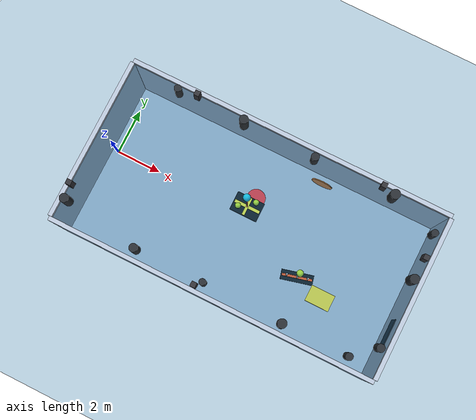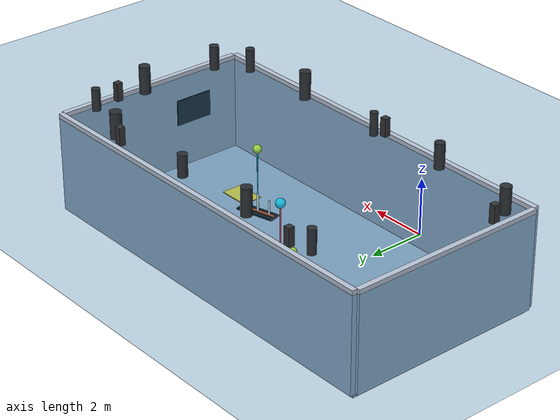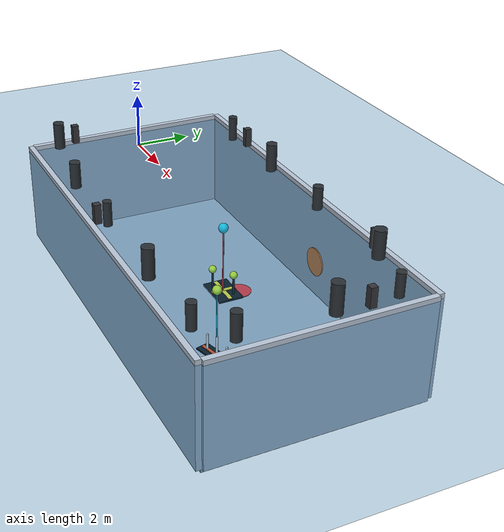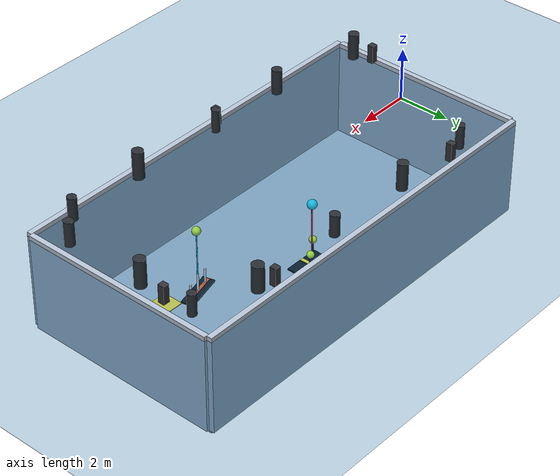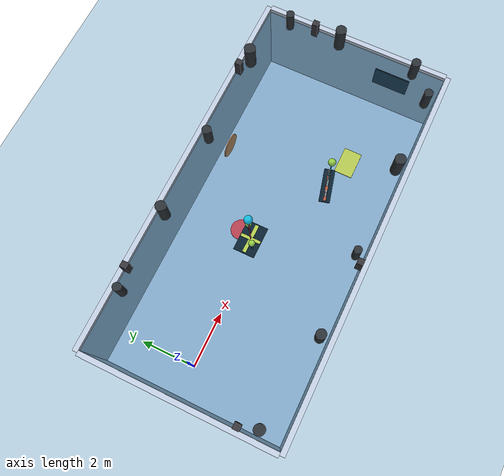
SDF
<?xml version="1.0" ?>
<sdf version="1.6">
  <world name="fathomwerx_pool">
    <physics type="ode">
      <max_step_size>0.001</max_step_size>
      <real_time_factor>1</real_time_factor>
      <real_time_update_rate>1000</real_time_update_rate>
    </physics>

    <scene>
      <ambient>0.01 0.01 0.01 1.0</ambient>
      <background>0.70 0.84 0.95 1.0</background>
      <grid>false</grid>
      <sky>
        <clouds>
          <speed>12</speed>
        </clouds>
      </sky>
      <shadows>1</shadows>
    </scene>

    <!-- Global lights copied from ocean_surface.world for consistent sim visibility. -->
    <light type="directional" name="sun1">
      <pose>50 0 150 0 0 0</pose>
      <diffuse>1 1 1 1</diffuse>
      <specular>.1 .1 .1 1</specular>
      <direction>0.3 0.3 -1</direction>
      <cast_shadows>false</cast_shadows>
    </light>

    <light type="directional" name="sun_diffuse">
      <pose>-50 0 -150 0 0 0</pose>
      <diffuse>0.6 0.6 0.6 1</diffuse>
      <specular>0 0 0 1</specular>
      <direction>-0.3 -0.3 -1</direction>
      <cast_shadows>false</cast_shadows>
    </light>

    <!-- Extra local fill light to keep the empty tank interior readable. -->
    <light type="point" name="pool_overhead_fill">
      <pose>0 0 8 0 0 0</pose>
      <diffuse>0.85 0.9 1.0 1</diffuse>
      <specular>0.15 0.15 0.15 1</specular>
      <attenuation>
        <range>30</range>
        <constant>0.6</constant>
        <linear>0.02</linear>
        <quadratic>0.002</quadratic>
      </attenuation>
      <cast_shadows>false</cast_shadows>
    </light>

    <gui fullscreen='0'>
      <camera name='user_camera'>
        <pose frame=''>6.4 -15.0 9.5 0.0 0.45 1.57</pose>
        <view_controller>orbit</view_controller>
        <projection_type>perspective</projection_type>
      </camera>
    </gui>

    <!-- Tank dimensions: 25ft x 50ft x 12ft => 7.62m x 15.24m x 3.66m -->
    <model name="pool_floor">
      <static>true</static>
      <pose>6.42 0.0 -3.76 0 0 0</pose>
      <link name="floor_link">
        <collision name="floor_collision">
          <geometry>
            <box>
              <size>15.24 7.62 0.2</size>
            </box>
          </geometry>
        </collision>
        <visual name="floor_visual">
          <geometry>
            <box>
              <size>15.24 7.62 0.2</size>
            </box>
          </geometry>
          <material>
            <ambient>0.58 0.66 0.74 1</ambient>
            <diffuse>0.66 0.74 0.82 1</diffuse>
          </material>
        </visual>
      </link>
    </model>

    <model name="pool_water_surface">
      <static>true</static>
      <pose>6.42 0.0 0.0 0 0 0</pose>
      <link name="water_link">
        <visual name="water_visual">
          <geometry>
            <plane>
              <normal>0 0 1</normal>
              <size>100 100</size>
            </plane>
          </geometry>
          <material>
            <ambient>0.1 0.3 0.5 0.8</ambient>
            <diffuse>0.1 0.4 0.6 0.8</diffuse>
            <specular>0.8 0.8 0.8 1</specular>
          </material>
        </visual>
        <collision name="water_collision">
          <geometry>
            <plane>
              <normal>0 0 1</normal>
              <size>100 100</size>
            </plane>
          </geometry>
          <surface>
            <friction>
              <ode>
                <mu>0.01</mu>
                <mu2>0.01</mu2>
              </ode>
            </friction>
          </surface>
        </collision>
      </link>
    </model>

    <model name="pool_wall_north">
      <static>true</static>
      <pose>6.42 3.91 -1.755 0 0 0</pose>
      <link name="wall_link">
        <collision name="wall_collision">
          <geometry>
            <box>
              <size>15.44 0.20 3.81</size>
            </box>
          </geometry>
        </collision>
        <visual name="wall_visual">
          <geometry>
            <box>
              <size>15.44 0.20 3.81</size>
            </box>
          </geometry>
          <material>
            <ambient>0.62 0.67 0.74 1</ambient>
            <diffuse>0.72 0.77 0.84 1</diffuse>
          </material>
        </visual>
      </link>
    </model>

    <model name="pool_wall_south">
      <static>true</static>
      <pose>6.42 -3.91 -1.755 0 0 0</pose>
      <link name="wall_link">
        <collision name="wall_collision">
          <geometry>
            <box>
              <size>15.44 0.20 3.81</size>
            </box>
          </geometry>
        </collision>
        <visual name="wall_visual">
          <geometry>
            <box>
              <size>15.44 0.20 3.81</size>
            </box>
          </geometry>
          <material>
            <ambient>0.62 0.67 0.74 1</ambient>
            <diffuse>0.72 0.77 0.84 1</diffuse>
          </material>
        </visual>
      </link>
    </model>

    <model name="pool_wall_east">
      <static>true</static>
      <pose>14.14 0.0 -1.755 0 0 0</pose>
      <link name="wall_link">
        <collision name="wall_collision">
          <geometry>
            <box>
              <size>0.20 7.62 3.81</size>
            </box>
          </geometry>
        </collision>
        <visual name="wall_visual">
          <geometry>
            <box>
              <size>0.20 7.62 3.81</size>
            </box>
          </geometry>
          <material>
            <ambient>0.62 0.67 0.74 1</ambient>
            <diffuse>0.72 0.77 0.84 1</diffuse>
          </material>
        </visual>
      </link>
    </model>

    <model name="pool_wall_west">
      <static>true</static>
      <pose>-1.30 0.0 -1.755 0 0 0</pose>
      <link name="wall_link">
        <collision name="wall_collision">
          <geometry>
            <box>
              <size>0.20 7.62 3.81</size>
            </box>
          </geometry>
        </collision>
        <visual name="wall_visual">
          <geometry>
            <box>
              <size>0.20 7.62 3.81</size>
            </box>
          </geometry>
          <material>
            <ambient>0.62 0.67 0.74 1</ambient>
            <diffuse>0.72 0.77 0.84 1</diffuse>
          </material>
        </visual>
      </link>
    </model>

    <model name="pool_lidar_reference_post_a">
      <static>true</static>
      <pose>2.00 3.68 0.45 0 0 0</pose>
      <link name="post_link">
        <collision name="post_collision">
          <geometry>
            <box>
              <size>0.24 0.24 0.70</size>
            </box>
          </geometry>
        </collision>
        <visual name="post_visual">
          <geometry>
            <box>
              <size>0.24 0.24 0.70</size>
            </box>
          </geometry>
          <material>
            <ambient>0.18 0.18 0.20 1</ambient>
            <diffuse>0.20 0.20 0.22 1</diffuse>
          </material>
        </visual>
      </link>
    </model>

    <model name="pool_lidar_reference_post_b">
      <static>true</static>
      <pose>5.60 -3.68 0.45 0 0 0</pose>
      <link name="post_link">
        <collision name="post_collision">
          <geometry>
            <box>
              <size>0.24 0.24 0.70</size>
            </box>
          </geometry>
        </collision>
        <visual name="post_visual">
          <geometry>
            <box>
              <size>0.24 0.24 0.70</size>
            </box>
          </geometry>
          <material>
            <ambient>0.18 0.18 0.20 1</ambient>
            <diffuse>0.20 0.20 0.22 1</diffuse>
          </material>
        </visual>
      </link>
    </model>

    <model name="pool_lidar_reference_post_c">
      <static>true</static>
      <pose>10.90 3.68 0.45 0 0 0</pose>
      <link name="post_link">
        <collision name="post_collision">
          <geometry>
            <box>
              <size>0.24 0.24 0.70</size>
            </box>
          </geometry>
        </collision>
        <visual name="post_visual">
          <geometry>
            <box>
              <size>0.24 0.24 0.70</size>
            </box>
          </geometry>
          <material>
            <ambient>0.18 0.18 0.20 1</ambient>
            <diffuse>0.20 0.20 0.22 1</diffuse>
          </material>
        </visual>
      </link>
    </model>

    <model name="pool_lidar_reference_post_d">
      <static>true</static>
      <pose>13.78 1.70 0.45 0 0 0</pose>
      <link name="post_link">
        <collision name="post_collision">
          <geometry>
            <box>
              <size>0.24 0.24 0.70</size>
            </box>
          </geometry>
        </collision>
        <visual name="post_visual">
          <geometry>
            <box>
              <size>0.24 0.24 0.70</size>
            </box>
          </geometry>
          <material>
            <ambient>0.18 0.18 0.20 1</ambient>
            <diffuse>0.20 0.20 0.22 1</diffuse>
          </material>
        </visual>
      </link>
    </model>

    <model name="pool_lidar_reference_post_e">
      <static>true</static>
      <pose>-1.08 -2.20 0.45 0 0 0</pose>
      <link name="post_link">
        <collision name="post_collision">
          <geometry>
            <box>
              <size>0.24 0.24 0.70</size>
            </box>
          </geometry>
        </collision>
        <visual name="post_visual">
          <geometry>
            <box>
              <size>0.24 0.24 0.70</size>
            </box>
          </geometry>
          <material>
            <ambient>0.18 0.18 0.20 1</ambient>
            <diffuse>0.20 0.20 0.22 1</diffuse>
          </material>
        </visual>
      </link>
    </model>

    <!-- Asymmetric registration pylons.
         Cylindrical wall-side landmarks give DLiO nonparallel LiDAR normals in
         the otherwise corridor-like pool while preserving the open center lane. -->
    <model name="pool_lidar_registration_landmarks">
      <static>true</static>
      <link name="landmarks_link">
        <collision name="north_pylon_1_collision">
          <pose>1.20 3.45 0.56 0 0 0</pose>
          <geometry><cylinder><radius>0.16</radius><length>0.92</length></cylinder></geometry>
        </collision>
        <visual name="north_pylon_1_visual">
          <pose>1.20 3.45 0.56 0 0 0</pose>
          <geometry><cylinder><radius>0.16</radius><length>0.92</length></cylinder></geometry>
          <material><ambient>0.12 0.14 0.16 1</ambient><diffuse>0.16 0.18 0.20 1</diffuse></material>
        </visual>
        <collision name="north_pylon_2_collision">
          <pose>4.35 3.47 0.62 0 0 0</pose>
          <geometry><cylinder><radius>0.20</radius><length>1.04</length></cylinder></geometry>
        </collision>
        <visual name="north_pylon_2_visual">
          <pose>4.35 3.47 0.62 0 0 0</pose>
          <geometry><cylinder><radius>0.20</radius><length>1.04</length></cylinder></geometry>
          <material><ambient>0.12 0.14 0.16 1</ambient><diffuse>0.16 0.18 0.20 1</diffuse></material>
        </visual>
        <collision name="north_pylon_3_collision">
          <pose>7.75 3.43 0.52 0 0 0</pose>
          <geometry><cylinder><radius>0.18</radius><length>0.84</length></cylinder></geometry>
        </collision>
        <visual name="north_pylon_3_visual">
          <pose>7.75 3.43 0.52 0 0 0</pose>
          <geometry><cylinder><radius>0.18</radius><length>0.84</length></cylinder></geometry>
          <material><ambient>0.12 0.14 0.16 1</ambient><diffuse>0.16 0.18 0.20 1</diffuse></material>
        </visual>
        <collision name="north_pylon_4_collision">
          <pose>11.45 3.46 0.60 0 0 0</pose>
          <geometry><cylinder><radius>0.22</radius><length>1.00</length></cylinder></geometry>
        </collision>
        <visual name="north_pylon_4_visual">
          <pose>11.45 3.46 0.60 0 0 0</pose>
          <geometry><cylinder><radius>0.22</radius><length>1.00</length></cylinder></geometry>
          <material><ambient>0.12 0.14 0.16 1</ambient><diffuse>0.16 0.18 0.20 1</diffuse></material>
        </visual>
        <collision name="south_pylon_1_collision">
          <pose>2.70 -3.45 0.58 0 0 0</pose>
          <geometry><cylinder><radius>0.19</radius><length>0.96</length></cylinder></geometry>
        </collision>
        <visual name="south_pylon_1_visual">
          <pose>2.70 -3.45 0.58 0 0 0</pose>
          <geometry><cylinder><radius>0.19</radius><length>0.96</length></cylinder></geometry>
          <material><ambient>0.12 0.14 0.16 1</ambient><diffuse>0.16 0.18 0.20 1</diffuse></material>
        </visual>
        <collision name="south_pylon_2_collision">
          <pose>5.90 -3.42 0.54 0 0 0</pose>
          <geometry><cylinder><radius>0.15</radius><length>0.88</length></cylinder></geometry>
        </collision>
        <visual name="south_pylon_2_visual">
          <pose>5.90 -3.42 0.54 0 0 0</pose>
          <geometry><cylinder><radius>0.15</radius><length>0.88</length></cylinder></geometry>
          <material><ambient>0.12 0.14 0.16 1</ambient><diffuse>0.16 0.18 0.20 1</diffuse></material>
        </visual>
        <collision name="south_pylon_3_collision">
          <pose>9.60 -3.48 0.64 0 0 0</pose>
          <geometry><cylinder><radius>0.21</radius><length>1.08</length></cylinder></geometry>
        </collision>
        <visual name="south_pylon_3_visual">
          <pose>9.60 -3.48 0.64 0 0 0</pose>
          <geometry><cylinder><radius>0.21</radius><length>1.08</length></cylinder></geometry>
          <material><ambient>0.12 0.14 0.16 1</ambient><diffuse>0.16 0.18 0.20 1</diffuse></material>
        </visual>
        <collision name="south_pylon_4_collision">
          <pose>12.65 -3.44 0.55 0 0 0</pose>
          <geometry><cylinder><radius>0.17</radius><length>0.90</length></cylinder></geometry>
        </collision>
        <visual name="south_pylon_4_visual">
          <pose>12.65 -3.44 0.55 0 0 0</pose>
          <geometry><cylinder><radius>0.17</radius><length>0.90</length></cylinder></geometry>
          <material><ambient>0.12 0.14 0.16 1</ambient><diffuse>0.16 0.18 0.20 1</diffuse></material>
        </visual>
        <collision name="east_pylon_1_collision">
          <pose>13.65 -2.55 0.57 0 0 0</pose>
          <geometry><cylinder><radius>0.18</radius><length>0.94</length></cylinder></geometry>
        </collision>
        <visual name="east_pylon_1_visual">
          <pose>13.65 -2.55 0.57 0 0 0</pose>
          <geometry><cylinder><radius>0.18</radius><length>0.94</length></cylinder></geometry>
          <material><ambient>0.12 0.14 0.16 1</ambient><diffuse>0.16 0.18 0.20 1</diffuse></material>
        </visual>
        <collision name="east_pylon_2_collision">
          <pose>13.67 0.60 0.63 0 0 0</pose>
          <geometry><cylinder><radius>0.21</radius><length>1.06</length></cylinder></geometry>
        </collision>
        <visual name="east_pylon_2_visual">
          <pose>13.67 0.60 0.63 0 0 0</pose>
          <geometry><cylinder><radius>0.21</radius><length>1.06</length></cylinder></geometry>
          <material><ambient>0.12 0.14 0.16 1</ambient><diffuse>0.16 0.18 0.20 1</diffuse></material>
        </visual>
        <collision name="east_pylon_3_collision">
          <pose>13.64 2.75 0.52 0 0 0</pose>
          <geometry><cylinder><radius>0.16</radius><length>0.84</length></cylinder></geometry>
        </collision>
        <visual name="east_pylon_3_visual">
          <pose>13.64 2.75 0.52 0 0 0</pose>
          <geometry><cylinder><radius>0.16</radius><length>0.84</length></cylinder></geometry>
          <material><ambient>0.12 0.14 0.16 1</ambient><diffuse>0.16 0.18 0.20 1</diffuse></material>
        </visual>
        <collision name="west_pylon_1_collision">
          <pose>-0.86 -2.90 0.60 0 0 0</pose>
          <geometry><cylinder><radius>0.20</radius><length>1.00</length></cylinder></geometry>
        </collision>
        <visual name="west_pylon_1_visual">
          <pose>-0.86 -2.90 0.60 0 0 0</pose>
          <geometry><cylinder><radius>0.20</radius><length>1.00</length></cylinder></geometry>
          <material><ambient>0.12 0.14 0.16 1</ambient><diffuse>0.16 0.18 0.20 1</diffuse></material>
        </visual>
      </link>
    </model>

    <model name="floor_circle_mid_pool">
      <static>true</static>
      <pose>6.00 1.40 -3.645 0 0 0</pose>
      <link name="target_link">
        <collision name="target_collision">
          <geometry>
            <cylinder>
              <radius>0.45</radius>
              <length>0.03</length>
            </cylinder>
          </geometry>
        </collision>
        <visual name="target_visual">
          <geometry>
            <cylinder>
              <radius>0.45</radius>
              <length>0.03</length>
            </cylinder>
          </geometry>
          <material>
            <ambient>0.88 0.12 0.12 1</ambient>
            <diffuse>0.98 0.18 0.18 1</diffuse>
          </material>
        </visual>
      </link>
    </model>

    <model name="floor_rect_far_pool">
      <static>true</static>
      <pose>10.80 -1.50 -3.645 0 0 0</pose>
      <link name="target_link">
        <collision name="target_collision">
          <geometry>
            <box>
              <size>1.20 0.80 0.03</size>
            </box>
          </geometry>
        </collision>
        <visual name="target_visual">
          <geometry>
            <box>
              <size>1.20 0.80 0.03</size>
            </box>
          </geometry>
          <material>
            <ambient>0.96 0.86 0.12 1</ambient>
            <diffuse>0.98 0.90 0.18 1</diffuse>
          </material>
        </visual>
      </link>
    </model>

    <model name="bottom_marker_rig_mid_pool">
      <static>true</static>
      <pose>5.80 0.85 -3.645 0 0 0</pose>
      <link name="target_link">
        <collision name="weighted_base_collision">
          <pose>0 0 0.025 0 0 0</pose>
          <geometry>
            <box>
              <size>1.40 0.95 0.05</size>
            </box>
          </geometry>
        </collision>
        <visual name="weighted_base_visual">
          <pose>0 0 0.025 0 0 0</pose>
          <geometry>
            <box>
              <size>1.40 0.95 0.05</size>
            </box>
          </geometry>
          <material>
            <ambient>0.02 0.02 0.02 1</ambient>
            <diffuse>0.02 0.02 0.02 1</diffuse>
          </material>
        </visual>
        <visual name="base_marker_cross_visual">
          <pose>0 0 0.06 0 0 0</pose>
          <geometry>
            <box>
              <size>1.30 0.16 0.03</size>
            </box>
          </geometry>
          <material>
            <ambient>0.98 0.92 0.12 1</ambient>
            <diffuse>1.0 0.95 0.18 1</diffuse>
          </material>
        </visual>
        <visual name="base_marker_cross_visual_orthogonal">
          <pose>0 0 0.065 0 0 1.570796</pose>
          <geometry>
            <box>
              <size>0.90 0.14 0.03</size>
            </box>
          </geometry>
          <material>
            <ambient>0.98 0.92 0.12 1</ambient>
            <diffuse>1.0 0.95 0.18 1</diffuse>
          </material>
        </visual>
        <collision name="short_rod_left_collision">
          <pose>-0.35 -0.25 0.38 0 0 0</pose>
          <geometry>
            <cylinder>
              <radius>0.04</radius>
              <length>0.70</length>
            </cylinder>
          </geometry>
        </collision>
        <visual name="short_rod_left_visual">
          <pose>-0.35 -0.25 0.38 0 0 0</pose>
          <geometry>
            <cylinder>
              <radius>0.04</radius>
              <length>0.70</length>
            </cylinder>
          </geometry>
          <material>
            <ambient>0.05 0.05 0.05 1</ambient>
            <diffuse>0.04 0.04 0.04 1</diffuse>
          </material>
        </visual>
        <collision name="short_rod_right_collision">
          <pose>0.35 0.25 0.38 0 0 0</pose>
          <geometry>
            <cylinder>
              <radius>0.04</radius>
              <length>0.70</length>
            </cylinder>
          </geometry>
        </collision>
        <visual name="short_rod_right_visual">
          <pose>0.35 0.25 0.38 0 0 0</pose>
          <geometry>
            <cylinder>
              <radius>0.04</radius>
              <length>0.70</length>
            </cylinder>
          </geometry>
          <material>
            <ambient>0.05 0.05 0.05 1</ambient>
            <diffuse>0.04 0.04 0.04 1</diffuse>
          </material>
        </visual>
        <collision name="tennis_ball_left_collision">
          <pose>-0.35 -0.25 0.82 0 0 0</pose>
          <geometry>
            <sphere>
              <radius>0.14</radius>
            </sphere>
          </geometry>
        </collision>
        <visual name="tennis_ball_left_visual">
          <pose>-0.35 -0.25 0.82 0 0 0</pose>
          <geometry>
            <sphere>
              <radius>0.14</radius>
            </sphere>
          </geometry>
          <material>
            <ambient>0.72 1.0 0.06 1</ambient>
            <diffuse>0.80 1.0 0.10 1</diffuse>
          </material>
        </visual>
        <collision name="tennis_ball_right_collision">
          <pose>0.35 0.25 0.82 0 0 0</pose>
          <geometry>
            <sphere>
              <radius>0.14</radius>
            </sphere>
          </geometry>
        </collision>
        <visual name="tennis_ball_right_visual">
          <pose>0.35 0.25 0.82 0 0 0</pose>
          <geometry>
            <sphere>
              <radius>0.14</radius>
            </sphere>
          </geometry>
          <material>
            <ambient>0.72 1.0 0.06 1</ambient>
            <diffuse>0.80 1.0 0.10 1</diffuse>
          </material>
        </visual>
        <collision name="sonar_tether_collision">
          <pose>0.0 0.0 1.30 0 0 0</pose>
          <geometry>
            <cylinder>
              <radius>0.025</radius>
              <length>2.55</length>
            </cylinder>
          </geometry>
        </collision>
        <visual name="sonar_tether_visual">
          <pose>0.0 0.0 1.30 0 0 0</pose>
          <geometry>
            <cylinder>
              <radius>0.025</radius>
              <length>2.55</length>
            </cylinder>
          </geometry>
          <material>
            <ambient>0.95 0.10 0.10 1</ambient>
            <diffuse>1.0 0.14 0.14 1</diffuse>
          </material>
        </visual>
        <collision name="upper_marker_collision">
          <pose>0.0 0.0 2.62 0 0 0</pose>
          <geometry>
            <sphere>
              <radius>0.18</radius>
            </sphere>
          </geometry>
        </collision>
        <visual name="upper_marker_visual">
          <pose>0.0 0.0 2.62 0 0 0</pose>
          <geometry>
            <sphere>
              <radius>0.18</radius>
            </sphere>
          </geometry>
          <material>
            <ambient>0.05 0.80 1.0 1</ambient>
            <diffuse>0.08 0.86 1.0 1</diffuse>
          </material>
        </visual>
      </link>
    </model>

    <model name="bottom_rod_line_far_pool">
      <static>true</static>
      <pose>9.40 -1.10 -3.645 0 0 0.25</pose>
      <link name="target_link">
        <collision name="weighted_base_collision">
          <pose>0 0 0.025 0 0 0</pose>
          <geometry>
            <box>
              <size>1.55 0.48 0.05</size>
            </box>
          </geometry>
        </collision>
        <visual name="weighted_base_visual">
          <pose>0 0 0.025 0 0 0</pose>
          <geometry>
            <box>
              <size>1.55 0.48 0.05</size>
            </box>
          </geometry>
          <material>
            <ambient>0.02 0.02 0.02 1</ambient>
            <diffuse>0.02 0.02 0.02 1</diffuse>
          </material>
        </visual>
        <visual name="line_marker_visual">
          <pose>0 0 0.065 0 0 0</pose>
          <geometry>
            <box>
              <size>1.45 0.12 0.03</size>
            </box>
          </geometry>
          <material>
            <ambient>0.98 0.25 0.04 1</ambient>
            <diffuse>1.0 0.32 0.06 1</diffuse>
          </material>
        </visual>
        <collision name="short_rod_a_collision">
          <pose>-0.50 0 0.34 0 0 0</pose>
          <geometry>
            <cylinder>
              <radius>0.04</radius>
              <length>0.62</length>
            </cylinder>
          </geometry>
        </collision>
        <visual name="short_rod_a_visual">
          <pose>-0.50 0 0.34 0 0 0</pose>
          <geometry>
            <cylinder>
              <radius>0.04</radius>
              <length>0.62</length>
            </cylinder>
          </geometry>
          <material>
            <ambient>0.94 0.94 0.94 1</ambient>
            <diffuse>0.98 0.98 0.98 1</diffuse>
          </material>
        </visual>
        <collision name="short_rod_b_collision">
          <pose>0 0 0.42 0 0 0</pose>
          <geometry>
            <cylinder>
              <radius>0.04</radius>
              <length>0.78</length>
            </cylinder>
          </geometry>
        </collision>
        <visual name="short_rod_b_visual">
          <pose>0 0 0.42 0 0 0</pose>
          <geometry>
            <cylinder>
              <radius>0.04</radius>
              <length>0.78</length>
            </cylinder>
          </geometry>
          <material>
            <ambient>0.94 0.94 0.94 1</ambient>
            <diffuse>0.98 0.98 0.98 1</diffuse>
          </material>
        </visual>
        <collision name="short_rod_c_collision">
          <pose>0.50 0 0.34 0 0 0</pose>
          <geometry>
            <cylinder>
              <radius>0.04</radius>
              <length>0.62</length>
            </cylinder>
          </geometry>
        </collision>
        <visual name="short_rod_c_visual">
          <pose>0.50 0 0.34 0 0 0</pose>
          <geometry>
            <cylinder>
              <radius>0.04</radius>
              <length>0.62</length>
            </cylinder>
          </geometry>
          <material>
            <ambient>0.94 0.94 0.94 1</ambient>
            <diffuse>0.98 0.98 0.98 1</diffuse>
          </material>
        </visual>
        <collision name="sonar_tether_collision">
          <pose>0.0 0.0 1.30 0 0 0</pose>
          <geometry>
            <cylinder>
              <radius>0.022</radius>
              <length>2.45</length>
            </cylinder>
          </geometry>
        </collision>
        <visual name="sonar_tether_visual">
          <pose>0.0 0.0 1.30 0 0 0</pose>
          <geometry>
            <cylinder>
              <radius>0.022</radius>
              <length>2.45</length>
            </cylinder>
          </geometry>
          <material>
            <ambient>0.05 0.80 1.0 1</ambient>
            <diffuse>0.08 0.86 1.0 1</diffuse>
          </material>
        </visual>
        <collision name="upper_marker_collision">
          <pose>0.0 0.0 2.58 0 0 0</pose>
          <geometry>
            <sphere>
              <radius>0.16</radius>
            </sphere>
          </geometry>
        </collision>
        <visual name="upper_marker_visual">
          <pose>0.0 0.0 2.58 0 0 0</pose>
          <geometry>
            <sphere>
              <radius>0.16</radius>
            </sphere>
          </geometry>
          <material>
            <ambient>0.72 1.0 0.06 1</ambient>
            <diffuse>0.80 1.0 0.10 1</diffuse>
          </material>
        </visual>
      </link>
    </model>

    <model name="wall_rect_far_east">
      <static>true</static>
      <pose>13.99 -1.80 -1.40 0 0 0</pose>
      <link name="target_link">
        <collision name="target_collision">
          <geometry>
            <box>
              <size>0.04 1.50 1.00</size>
            </box>
          </geometry>
        </collision>
        <visual name="target_visual">
          <geometry>
            <box>
              <size>0.04 1.50 1.00</size>
            </box>
          </geometry>
          <material>
            <ambient>0.12 0.12 0.12 1</ambient>
            <diffuse>0.08 0.08 0.08 1</diffuse>
            <specular>0.02 0.02 0.02 1</specular>
          </material>
        </visual>
      </link>
    </model>

    <model name="wall_circle_north">
      <static>true</static>
      <pose>8.50 3.00 -1.50 1.570796 0 0</pose>
      <link name="target_link">
        <collision name="target_collision">
          <geometry>
            <cylinder>
              <radius>0.50</radius>
              <length>0.04</length>
            </cylinder>
          </geometry>
        </collision>
        <visual name="target_visual">
          <geometry>
            <cylinder>
              <radius>0.50</radius>
              <length>0.04</length>
            </cylinder>
          </geometry>
          <material>
            <ambient>0.95 0.45 0.10 1</ambient>
            <diffuse>0.98 0.52 0.14 1</diffuse>
          </material>
        </visual>
      </link>
    </model>

  </world>
</sdf>
